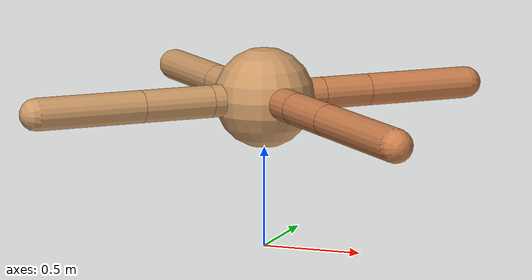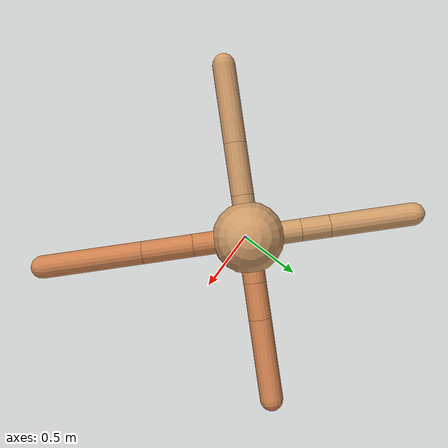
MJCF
<mujoco model="ant">
  <compiler angle="degree" coordinate="local" inertiafromgeom="true" />
  <option integrator="RK4" timestep="0.01" />
  <custom>
    <numeric data="0.0 0.0 0.55 1.0 0.0 0.0 0.0 0.0 1.0 0.0 -1.0 0.0 -1.0 0.0 1.0" name="init_qpos" />
  </custom>
  <default>
    <joint armature="1" damping="1" limited="true" />
    <geom conaffinity="0" condim="3" density="5.0" friction="1.5 0.1 0.1" margin="0.01" rgba="0.8 0.6 0.4 1" />
  </default>
  <worldbody>
    <body name="torso" pos="0 0 0.75">
      <geom name="torso_geom" pos="0 0 0" size="0.25" type="sphere" />

      <body name="front_left_leg" pos="0 0 0">
        <geom fromto="0.0 0.0 0.0 0.2204073681508009 0.2204073681508009 0.0" name="aux_1_geom" size="0.08" type="capsule" rgba=".8 .5 .3 1" />
        <body name="aux_1" pos="0.2204073681508009 0.2204073681508009 0.0">
          <joint axis="0 0 1" name="hip_1" pos="0.0 0.0 0.0" range="-40 40" type="hinge" />
          <geom fromto="0.0 0.0 0.0 0.17801695390949723 0.17801695390949723 0.0" name="left_leg_geom" size="0.08" type="capsule" rgba=".8 .5 .3 1" />
          <body pos="0.17801695390949723 0.17801695390949723 0.0" name="front_left_foot">
            <joint axis="-1 1 0" name="ankle_1" pos="0.0 0.0 0.0" range="30 100" type="hinge" />
            <geom fromto="0.0 0.0 0.0 0.39613405521301837 0.39613405521301837 0.0" name="left_ankle_geom" size="0.08" type="capsule" rgba=".8 .5 .3 1" />
          </body>
        </body>
      </body>
      <body name="front_right_leg" pos="0 0 0">
        <geom fromto="0.0 0.0 0.0 -0.25665539456274317 0.25665539456274317 0.0" name="aux_2_geom" size="0.08" type="capsule" />
        <body name="aux_2" pos="-0.25665539456274317 0.25665539456274317 0.0">
          <joint axis="0 0 1" name="hip_2" pos="0.0 0.0 0.0" range="-40 40" type="hinge" />
          <geom fromto="0.0 0.0 0.0 -0.1402932086237527 0.1402932086237527 0.0" name="right_leg_geom" size="0.08" type="capsule" />
          <body pos="-0.1402932086237527 0.1402932086237527 0.0" name="front_right_foot">
            <joint axis="1 1 0" name="ankle_2" pos="0.0 0.0 0.0" range="-100 -30" type="hinge" />
            <geom fromto="0.0 0.0 0.0 -0.41117605315289496 0.41117605315289496 0.0" name="right_ankle_geom" size="0.08" type="capsule" />
          </body>
        </body>
      </body>
      <body name="left_back_leg" pos="0 0 0">
        <geom fromto="0.0 0.0 0.0 -0.20667437787464027 -0.20667437787464027 0.0" name="aux_3_geom" size="0.08" type="capsule" />
        <body name="aux_3" pos="-0.20667437787464027 -0.20667437787464027 0.0">
          <joint axis="0 0 1" name="hip_3" pos="0.0 0.0 0.0" range="-40 40" type="hinge" />
          <geom fromto="0.0 0.0 0.0 -0.2557353417869423 -0.2557353417869423 0.0" name="back_leg_geom" size="0.08" type="capsule" />
          <body pos="-0.2557353417869423 -0.2557353417869423 0.0" name="left_back_foot">
            <joint axis="-1 1 0" name="ankle_3" pos="0.0 0.0 0.0" range="-100 -30" type="hinge" />
            <geom fromto="0.0 0.0 0.0 -0.38497185531123984 -0.38497185531123984 0.0" name="third_ankle_geom" size="0.08" type="capsule" />
          </body>
        </body>
      </body>
      <body name="right_back_leg" pos="0 0 0">
        <geom fromto="0.0 0.0 0.0 0.2697479976077041 -0.2697479976077041 0.0" name="aux_4_geom" size="0.08" type="capsule" rgba=".8 .5 .3 1" />
        <body name="aux_4" pos="0.2697479976077041 -0.2697479976077041 0.0">
          <joint axis="0 0 1" name="hip_4" pos="0.0 0.0 0.0" range="-40 40" type="hinge" />
          <geom fromto="0.0 0.0 0.0 0.2491886377606344 -0.2491886377606344 0.0" name="rightback_leg_geom" size="0.08" type="capsule" rgba=".8 .5 .3 1" />
          <body pos="0.2491886377606344 -0.2491886377606344 0.0" name="right_back_foot">
            <joint axis="1 1 0" name="ankle_4" pos="0.0 0.0 0.0" range="30 100" type="hinge" />
            <geom fromto="0.0 0.0 0.0 0.49083970180849407 -0.49083970180849407 0.0" name="fourth_ankle_geom" size="0.08" type="capsule" rgba=".8 .5 .3 1" />
          </body>
        </body>
      </body>
    </body>
  </worldbody>
  <actuator>
    <motor ctrllimited="true" ctrlrange="-1.0 1.0" joint="hip_4" gear="150" />
    <motor ctrllimited="true" ctrlrange="-1.0 1.0" joint="ankle_4" gear="150" />
    <motor ctrllimited="true" ctrlrange="-1.0 1.0" joint="hip_1" gear="150" />
    <motor ctrllimited="true" ctrlrange="-1.0 1.0" joint="ankle_1" gear="150" />
    <motor ctrllimited="true" ctrlrange="-1.0 1.0" joint="hip_2" gear="150" />
    <motor ctrllimited="true" ctrlrange="-1.0 1.0" joint="ankle_2" gear="150" />
    <motor ctrllimited="true" ctrlrange="-1.0 1.0" joint="hip_3" gear="150" />
    <motor ctrllimited="true" ctrlrange="-1.0 1.0" joint="ankle_3" gear="150" />
  </actuator>
</mujoco>
